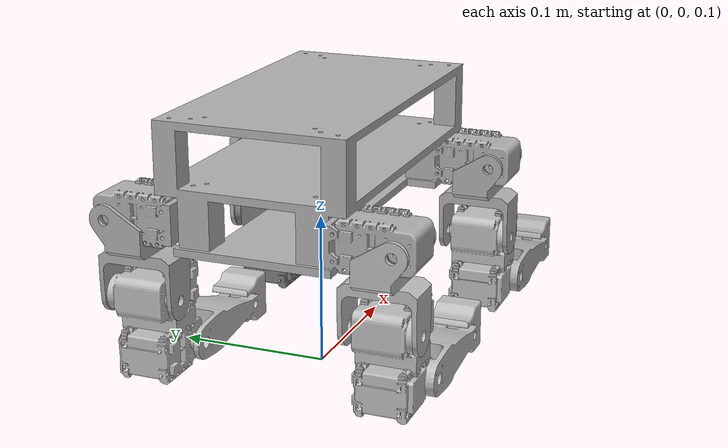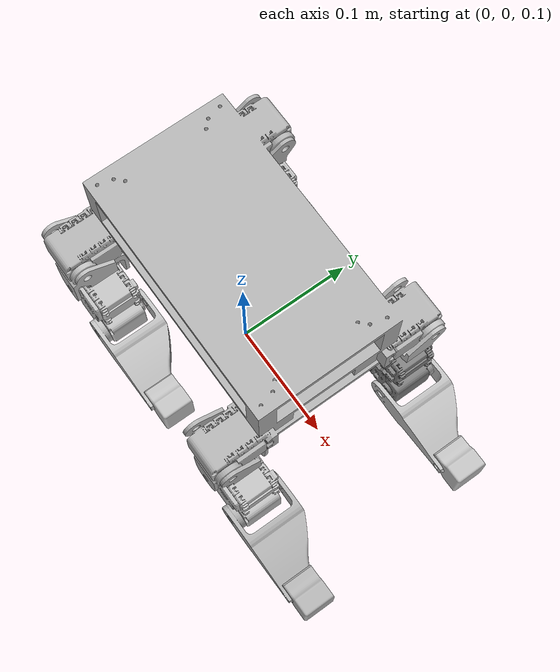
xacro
<?xml version="1.0"?>

<robot name="clifford" xmlns:xacro="http://www.ros.org/wiki/xacro">
  <link name='base_footprint'>
  </link>

  <joint name="base_joint" type="fixed">
    <parent link="base_footprint"/>
    <child link="base_link"/>
    <origin xyz="0 0 0.2425"/>
  </joint>

  <link
    name="base_link">
    <inertial>
      <origin
        xyz="0.00011141 -0.00021949 -0.002926"
        rpy="0 0 0" />
      <mass
        value="0.67215" />
      <inertia
        ixx="0.00045592"
        ixy="-1.3217E-15"
        ixz="-5.901E-15"
        iyy="0.0015305"
        iyz="-3.9529E-11"
        izz="0.0019462" />
    </inertial>
    <visual>
      <origin
        xyz="0 0 0"
        rpy="0 0 0" />
      <geometry>
        <mesh
          filename="package://clifford/meshes/base_link.STL" />
      </geometry>
      <material
        name="">
        <color
          rgba="0.69804 0.69804 0.69804 1" />
      </material>
    </visual>
    <collision>
      <origin
        xyz="0 0 0"
        rpy="0 0 0" />
      <geometry>
        <mesh
          filename="package://clifford/meshes/base_link.STL" />
      </geometry>
    </collision>
  </link>

  <link
    name="hombro_1_link">
    <inertial>
      <origin
        xyz="0.023513 0.010937 0.0018815"
        rpy="0 0 0" />
      <mass
        value="0.026193" />
      <inertia
        ixx="9.4188E-06"
        ixy="-2.9548E-07"
        ixz="-1.387E-15"
        iyy="7.078E-06"
        iyz="3.2313E-14"
        izz="7.8863E-06" />
    </inertial>
    <visual>
      <origin
        xyz="0 0 0"
        rpy="0 0 0" />
      <geometry>
        <mesh
          filename="package://clifford/meshes/hombro_1_link.STL" />
      </geometry>
      <material
        name="">
        <color
          rgba="0.75294 0.75294 0.75294 1" />
      </material>
    </visual>
    <collision>
      <origin
        xyz="0 0 0"
        rpy="0 0 0" />
      <geometry>
        <mesh
          filename="package://clifford/meshes/hombro_1_link.STL" />
      </geometry>
    </collision>
  </link>
  <joint
    name="hombro_1_joint"
    type="revolute">
    <origin
      xyz="-0.0925 -0.090321 -0.02"
      rpy="0 1.5708 0" />
    <parent
      link="base_link" />
    <child
      link="hombro_1_link" />
    <axis
      xyz="0 0 1" />
    <limit
      lower="-1.57"
      upper="1.57"
      effort="1"
      velocity="1" />
  </joint>
  <link
    name="codo_1_link">
    <inertial>
      <origin
        xyz="0.019153 0.014488 0.00072788"
        rpy="0 0 0" />
      <mass
        value="0.094179" />
      <inertia
        ixx="1.9321E-05"
        ixy="1.9765E-11"
        ixz="7.2156E-17"
        iyy="8.49E-06"
        iyz="2.8789E-15"
        izz="2.0432E-05" />
    </inertial>
    <visual>
      <origin
        xyz="0 0 0"
        rpy="0 0 0" />
      <geometry>
        <mesh
          filename="package://clifford/meshes/codo_1_link.STL" />
      </geometry>
      <material
        name="">
        <color
          rgba="0.75294 0.75294 0.75294 1" />
      </material>
    </visual>
    <collision>
      <origin
        xyz="0 0 0"
        rpy="0 0 0" />
      <geometry>
        <mesh
          filename="package://clifford/meshes/codo_1_link.STL" />
      </geometry>
    </collision>
  </link>
  <joint
    name="codo_1_joint"
    type="revolute">
    <origin
      xyz="0.0535 0.01292 0.0013892"
      rpy="1.5708 0 0" />
    <parent
      link="hombro_1_link" />
    <child
      link="codo_1_link" />
    <axis
      xyz="0 0 1" />
    <limit
      lower="-1.57"
      upper="1.57"
      effort="1"
      velocity="1" />
  </joint>
  <link
    name="muneca_1_link">
    <inertial>
      <origin
        xyz="0.04965 -0.00035471 0.0050309"
        rpy="0 0 0" />
      <mass
        value="0.072202" />
      <inertia
        ixx="1.4705E-05"
        ixy="1.1128E-07"
        ixz="-2.5527E-06"
        iyy="2.6079E-05"
        iyz="2.973E-08"
        izz="1.815E-05" />
    </inertial>
    <visual>
      <origin
        xyz="0 0 0"
        rpy="0 0 0" />
      <geometry>
        <mesh
          filename="package://clifford/meshes/muneca_1_link.STL" />
      </geometry>
      <material
        name="">
        <color
          rgba="0.75294 0.75294 0.75294 1" />
      </material>
    </visual>
    <collision>
      <origin
        xyz="0 0 0"
        rpy="0 0 0" />
      <geometry>
        <mesh
          filename="package://clifford/meshes/muneca_1_link.STL" />
      </geometry>
    </collision>
  </link>
  <joint
    name="muneca_1_joint"
    type="revolute">
    <origin
      xyz="0.039 0.0295 0"
      rpy="0 0 1.5708" />
    <parent
      link="codo_1_link" />
    <child
      link="muneca_1_link" />
    <axis
      xyz="0 0 1" />
    <limit
      lower="-1.57"
      upper="1.57"
      effort="1"
      velocity="1" />
  </joint>
  <link
    name="hombro_2_link">
    <inertial>
      <origin
        xyz="0.023513 0.011042 0.0011094"
        rpy="0 0 0" />
      <mass
        value="0.026193" />
      <inertia
        ixx="9.4188E-06"
        ixy="-2.9475E-07"
        ixz="2.0733E-08"
        iyy="7.082E-06"
        iyz="5.6575E-08"
        izz="7.8823E-06" />
    </inertial>
    <visual>
      <origin
        xyz="0 0 0"
        rpy="0 0 0" />
      <geometry>
        <mesh
          filename="package://clifford/meshes/hombro_2_link.STL" />
      </geometry>
      <material
        name="">
        <color
          rgba="0.69804 0.69804 0.69804 1" />
      </material>
    </visual>
    <collision>
      <origin
        xyz="0 0 0"
        rpy="0 0 0" />
      <geometry>
        <mesh
          filename="package://clifford/meshes/hombro_2_link.STL" />
      </geometry>
    </collision>
  </link>
  <joint
    name="hombro_2_joint"
    type="revolute">
    <origin
      xyz="0.0925 -0.090321 -0.02"
      rpy="0.070225 1.5708 0" />
    <parent
      link="base_link" />
    <child
      link="hombro_2_link" />
    <axis
      xyz="0 0 1" />
    <limit
      lower="-1.57"
      upper="1.57"
      effort="1"
      velocity="1" />
  </joint>
  <link
    name="codo_2_link">
    <inertial>
      <origin
        xyz="0.019153 0.014488 0.00072787"
        rpy="0 0 0" />
      <mass
        value="0.094179" />
      <inertia
        ixx="1.9321E-05"
        ixy="1.9765E-11"
        ixz="7.2154E-17"
        iyy="8.49E-06"
        iyz="2.8789E-15"
        izz="2.0432E-05" />
    </inertial>
    <visual>
      <origin
        xyz="0 0 0"
        rpy="0 0 0" />
      <geometry>
        <mesh
          filename="package://clifford/meshes/codo_2_link.STL" />
      </geometry>
      <material
        name="">
        <color
          rgba="0.75294 0.75294 0.75294 1" />
      </material>
    </visual>
    <collision>
      <origin
        xyz="0 0 0"
        rpy="0 0 0" />
      <geometry>
        <mesh
          filename="package://clifford/meshes/codo_2_link.STL" />
      </geometry>
    </collision>
  </link>
  <joint
    name="codo_2_joint"
    type="revolute">
    <origin
      xyz="0.0535 0.012985 0.00047923"
      rpy="1.5006 0 0" />
    <parent
      link="hombro_2_link" />
    <child
      link="codo_2_link" />
    <axis
      xyz="0 0 1" />
    <limit
      lower="-1.57"
      upper="1.57"
      effort="1"
      velocity="1" />
  </joint>
  <link
    name="muneca_2_link">
    <inertial>
      <origin
        xyz="0.04965 -0.00035471 0.0050309"
        rpy="0 0 0" />
      <mass
        value="0.072202" />
      <inertia
        ixx="1.4705E-05"
        ixy="1.1128E-07"
        ixz="-2.5527E-06"
        iyy="2.6079E-05"
        iyz="2.973E-08"
        izz="1.815E-05" />
    </inertial>
    <visual>
      <origin
        xyz="0 0 0"
        rpy="0 0 0" />
      <geometry>
        <mesh
          filename="package://clifford/meshes/muneca_2_link.STL" />
      </geometry>
      <material
        name="">
        <color
          rgba="0.69804 0.69804 0.69804 1" />
      </material>
    </visual>
    <collision>
      <origin
        xyz="0 0 0"
        rpy="0 0 0" />
      <geometry>
        <mesh
          filename="package://clifford/meshes/muneca_2_link.STL" />
      </geometry>
    </collision>
  </link>
  <joint
    name="muneca_2_joint"
    type="revolute">
    <origin
      xyz="0.039 0.0295 0"
      rpy="0 0 1.5708" />
    <parent
      link="codo_2_link" />
    <child
      link="muneca_2_link" />
    <axis
      xyz="0 0 1" />
    <limit
      lower="-1.57"
      upper="1.57"
      effort="1"
      velocity="1" />
  </joint>
  <link
    name="hombro_3_link">
    <inertial>
      <origin
        xyz="0.023513 -0.010937 -0.0043614"
        rpy="0 0 0" />
      <mass
        value="0.026193" />
      <inertia
        ixx="9.4188E-06"
        ixy="2.9548E-07"
        ixz="-5.7849E-15"
        iyy="7.078E-06"
        iyz="4.0305E-14"
        izz="7.8863E-06" />
    </inertial>
    <visual>
      <origin
        xyz="0 0 0"
        rpy="0 0 0" />
      <geometry>
        <mesh
          filename="package://clifford/meshes/hombro_3_link.STL" />
      </geometry>
      <material
        name="">
        <color
          rgba="0.75294 0.75294 0.75294 1" />
      </material>
    </visual>
    <collision>
      <origin
        xyz="0 0 0"
        rpy="0 0 0" />
      <geometry>
        <mesh
          filename="package://clifford/meshes/hombro_3_link.STL" />
      </geometry>
    </collision>
  </link>
  <joint
    name="hombro_3_joint"
    type="revolute">
    <origin
      xyz="0.0925 0.089179 -0.02"
      rpy="0 1.5708 0" />
    <parent
      link="base_link" />
    <child
      link="hombro_3_link" />
    <axis
      xyz="0 0 1" />
    <limit
      lower="-1.57"
      upper="1.57"
      effort="1"
      velocity="1" />
  </joint>
  <link
    name="codo_3_link">
    <inertial>
      <origin
        xyz="0.019153 -0.014488 -0.00037212"
        rpy="0 0 0" />
      <mass
        value="0.094179" />
      <inertia
        ixx="1.9321E-05"
        ixy="1.9765E-11"
        ixz="-1.4981E-16"
        iyy="8.49E-06"
        iyz="2.8729E-15"
        izz="2.0432E-05" />
    </inertial>
    <visual>
      <origin
        xyz="0 0 0"
        rpy="0 0 0" />
      <geometry>
        <mesh
          filename="package://clifford/meshes/codo_3_link.STL" />
      </geometry>
      <material
        name="">
        <color
          rgba="0.50196 0.50196 0.50196 1" />
      </material>
    </visual>
    <collision>
      <origin
        xyz="0 0 0"
        rpy="0 0 0" />
      <geometry>
        <mesh
          filename="package://clifford/meshes/codo_3_link.STL" />
      </geometry>
    </collision>
  </link>
  <joint
    name="codo_3_joint"
    type="revolute">
    <origin
      xyz="0.0535 -0.01182 -0.011111"
      rpy="-1.5708 0 0" />
    <parent
      link="hombro_3_link" />
    <child
      link="codo_3_link" />
    <axis
      xyz="0 0 1" />
    <limit
      lower="-1.57"
      upper="1.57"
      effort="1"
      velocity="1" />
  </joint>
  <link
    name="muneca_3_link">
    <inertial>
      <origin
        xyz="0.04965 0.0003547 -0.0055622"
        rpy="0 0 0" />
      <mass
        value="0.072202" />
      <inertia
        ixx="1.4705E-05"
        ixy="-1.1128E-07"
        ixz="2.5527E-06"
        iyy="2.6079E-05"
        iyz="2.973E-08"
        izz="1.815E-05" />
    </inertial>
    <visual>
      <origin
        xyz="0 0 0"
        rpy="0 0 0" />
      <geometry>
        <mesh
          filename="package://clifford/meshes/muneca_3_link.STL" />
      </geometry>
      <material
        name="">
        <color
          rgba="0.75294 0.75294 0.75294 1" />
      </material>
    </visual>
    <collision>
      <origin
        xyz="0 0 0"
        rpy="0 0 0" />
      <geometry>
        <mesh
          filename="package://clifford/meshes/muneca_3_link.STL" />
      </geometry>
    </collision>
  </link>
  <joint
    name="muneca_3_joint"
    type="revolute">
    <origin
      xyz="0.039 -0.0295 0"
      rpy="0 0 -1.5708" />
    <parent
      link="codo_3_link" />
    <child
      link="muneca_3_link" />
    <axis
      xyz="0 0 1" />
    <limit
      lower="-1.57"
      upper="1.57"
      effort="1"
      velocity="1" />
  </joint>
  <link
    name="hombro_4_link">
    <inertial>
      <origin
        xyz="0.023513 -0.010937 0.00049385"
        rpy="0 0 0" />
      <mass
        value="0.026193" />
      <inertia
        ixx="9.4188E-06"
        ixy="2.9548E-07"
        ixz="-5.7849E-15"
        iyy="7.078E-06"
        iyz="4.0305E-14"
        izz="7.8863E-06" />
    </inertial>
    <visual>
      <origin
        xyz="0 0 0"
        rpy="0 0 0" />
      <geometry>
        <mesh
          filename="package://clifford/meshes/hombro_4_link.STL" />
      </geometry>
      <material
        name="">
        <color
          rgba="0.69804 0.69804 0.69804 1" />
      </material>
    </visual>
    <collision>
      <origin
        xyz="0 0 0"
        rpy="0 0 0" />
      <geometry>
        <mesh
          filename="package://clifford/meshes/hombro_4_link.STL" />
      </geometry>
    </collision>
  </link>
  <joint
    name="hombro_4_joint"
    type="revolute">
    <origin
      xyz="-0.0925 0.089179 -0.02"
      rpy="0 1.5708 0" />
    <parent
      link="base_link" />
    <child
      link="hombro_4_link" />
    <axis
      xyz="0 0 1" />
    <limit
      lower="-1.57"
      upper="1.57"
      effort="1"
      velocity="1" />
  </joint>
  <link
    name="codo_4_link">
    <inertial>
      <origin
        xyz="0.019153 -0.014488 -0.00037212"
        rpy="0 0 0" />
      <mass
        value="0.094179" />
      <inertia
        ixx="1.9321E-05"
        ixy="1.9765E-11"
        ixz="-1.4982E-16"
        iyy="8.49E-06"
        iyz="2.8728E-15"
        izz="2.0432E-05" />
    </inertial>
    <visual>
      <origin
        xyz="0 0 0"
        rpy="0 0 0" />
      <geometry>
        <mesh
          filename="package://clifford/meshes/codo_4_link.STL" />
      </geometry>
      <material
        name="">
        <color
          rgba="0.75294 0.75294 0.75294 1" />
      </material>
    </visual>
    <collision>
      <origin
        xyz="0 0 0"
        rpy="0 0 0" />
      <geometry>
        <mesh
          filename="package://clifford/meshes/codo_4_link.STL" />
      </geometry>
    </collision>
  </link>
  <joint
    name="codo_4_joint"
    type="revolute">
    <origin
      xyz="0.0535 -0.01182 -0.0013892"
      rpy="-1.5708 0 0" />
    <parent
      link="hombro_4_link" />
    <child
      link="codo_4_link" />
    <axis
      xyz="0 0 1" />
    <limit
      lower="-1.57"
      upper="1.57"
      effort="1"
      velocity="1" />
  </joint>
  <link
    name="muneca_4_link">
    <inertial>
      <origin
        xyz="0.04965 0.0003547 -0.0055622"
        rpy="0 0 0" />
      <mass
        value="0.072202" />
      <inertia
        ixx="1.4705E-05"
        ixy="-1.1128E-07"
        ixz="2.5527E-06"
        iyy="2.6079E-05"
        iyz="2.973E-08"
        izz="1.815E-05" />
    </inertial>
    <visual>
      <origin
        xyz="0 0 0"
        rpy="0 0 0" />
      <geometry>
        <mesh
          filename="package://clifford/meshes/muneca_4_link.STL" />
      </geometry>
      <material
        name="">
        <color
          rgba="0.75294 0.75294 0.75294 1" />
      </material>
    </visual>
    <collision>
      <origin
        xyz="0 0 0"
        rpy="0 0 0" />
      <geometry>
        <mesh
          filename="package://clifford/meshes/muneca_4_link.STL" />
      </geometry>
    </collision>
  </link>
  <joint
    name="muneca_4_joint"
    type="revolute">
    <origin
      xyz="0.039 -0.0295 0"
      rpy="0 0 -1.5708" />
    <parent
      link="codo_4_link" />
    <child
      link="muneca_4_link" />
    <axis
      xyz="0 0 1" />
    <limit
      lower="-1.57"
      upper="1.57"
      effort="1"
      velocity="1" />
  </joint>
</robot>
